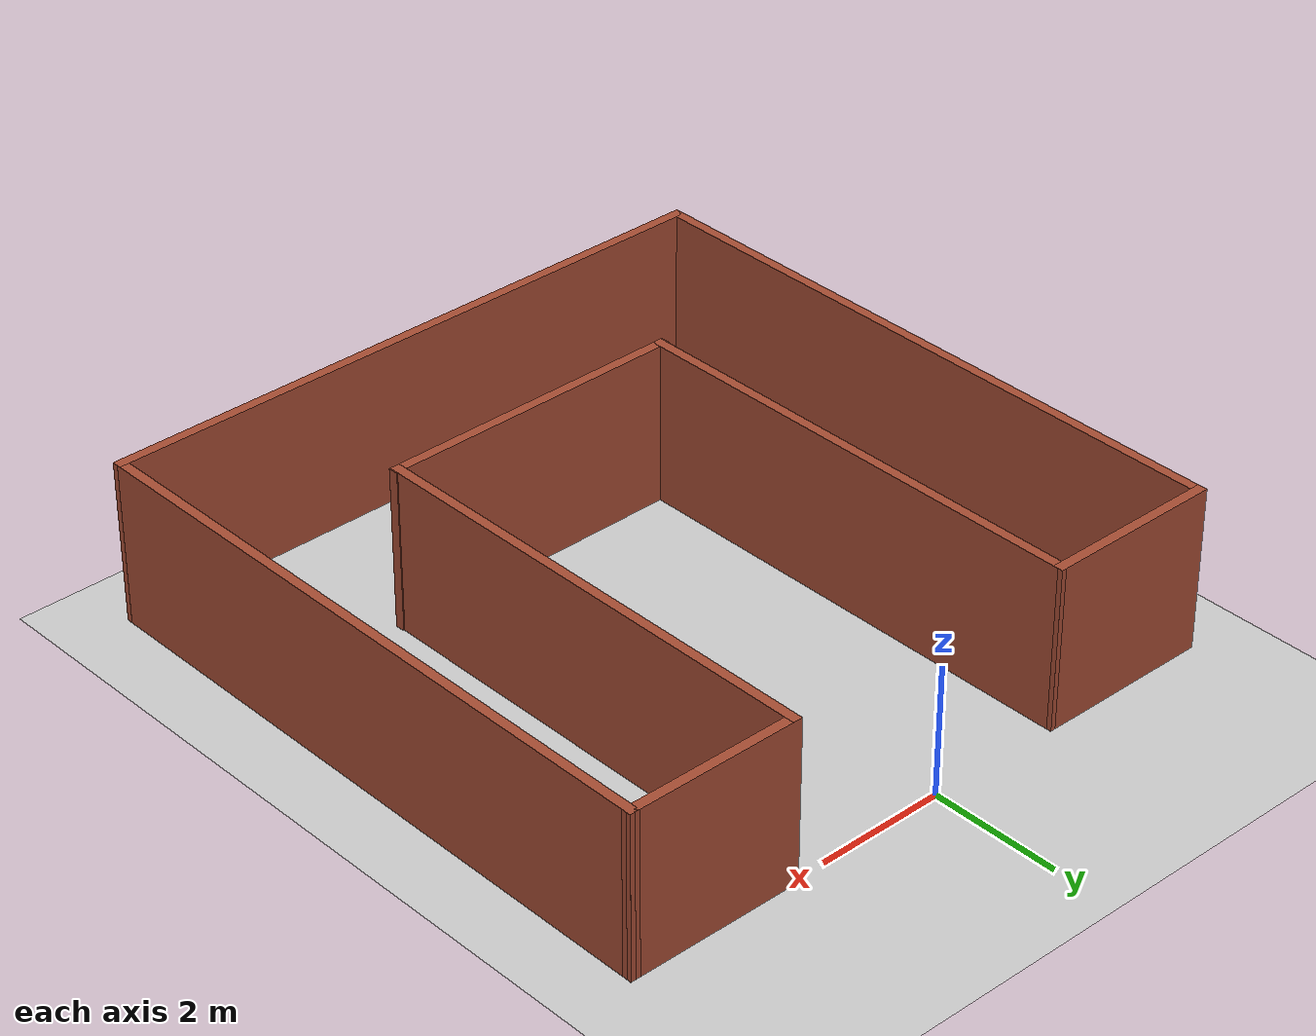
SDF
<sdf version="1.6">
 <world name="default">
  <light name="sun" type="directional">
   <pose>0 0 10 0 -0 0</pose>
   <diffuse>0.8 0.8 0.8 1</diffuse>
   <specular>0.1 0.1 0.1 1</specular>
   <attenuation>
    <range>1000</range>
    <constant>0.9</constant>
    <linear>0.01</linear>
    <quadratic>0.001</quadratic>
   </attenuation>
   <direction>-0.5 0.5 -1</direction>
  </light>
  <model name="ground_plane">
   <static>1</static>
   <link name="link">
    <collision name="collision">
     <geometry><plane><normal>0 0 1</normal><size>100 100</size></plane></geometry>
     <surface><friction><ode><mu>100</mu><mu2>50</mu2></ode></friction></surface>
    </collision>
    <visual name="visual">
     <cast_shadows>0</cast_shadows>
     <geometry><plane><normal>0 0 1</normal><size>100 100</size></plane></geometry>
     <material>
      <script><uri>file://media/materials/scripts/gazebo.material</uri><name>Gazebo/Grey</name></script>
     </material>
    </visual>
   </link>
  </model>
  <gravity>0 0 -9.8</gravity>
  <magnetic_field>6e-06 2.3e-05 -4.2e-05</magnetic_field>
  <atmosphere type="adiabatic"/>
  <physics name="default_physics" default="0" type="ode">
   <max_step_size>0.001</max_step_size>
   <real_time_factor>1</real_time_factor>
   <real_time_update_rate>1000</real_time_update_rate>
  </physics>
  <scene><ambient>0.4 0.4 0.4 1</ambient><background>0.7 0.7 0.7 1</background><shadows>1</shadows></scene>
  <spherical_coordinates>
   <surface_model>EARTH_WGS84</surface_model>
   <latitude_deg>0</latitude_deg>
   <longitude_deg>0</longitude_deg>
   <elevation>0</elevation>
   <heading_deg>0</heading_deg>
  </spherical_coordinates>
  <model name="wall">
   <pose>0.216499 -4.95825 0 0 -0 0</pose>
   <link name="Wall_14">
    <collision name="Wall_14_Collision">
     <geometry><box><size>10.0393 0.15 2.5</size></box></geometry>
     <pose>0 0 1.25 0 -0 0</pose>
    </collision>
    <visual name="Wall_14_Visual">
     <pose>0 0 1.25 0 -0 0</pose>
     <geometry><box><size>10.0393 0.15 2.5</size></box></geometry>
     <material>
      <script><uri>file://media/materials/scripts/gazebo.material</uri><name>Gazebo/Bricks</name></script>
      <ambient>1 1 1 1</ambient>
     </material>
    </visual>
    <pose>-4.93897 -0.000135 0 0 0 -1.5708</pose>
   </link>
   <link name="Wall_15">
    <collision name="Wall_15_Collision">
     <geometry><box><size>10 0.15 2.5</size></box></geometry>
     <pose>0 0 1.25 0 -0 0</pose>
    </collision>
    <visual name="Wall_15_Visual">
     <pose>0 0 1.25 0 -0 0</pose>
     <geometry><box><size>10 0.15 2.5</size></box></geometry>
     <material>
      <script><uri>file://media/materials/scripts/gazebo.material</uri><name>Gazebo/Bricks</name></script>
      <ambient>1 1 1 1</ambient>
     </material>
    </visual>
    <pose>-0.013966 -4.9448 0 0 -0 0</pose>
   </link>
   <link name="Wall_16">
    <collision name="Wall_16_Collision">
     <geometry><box><size>10.0197 0.15 2.5</size></box></geometry>
     <pose>0 0 1.25 0 -0 0</pose>
    </collision>
    <visual name="Wall_16_Visual">
     <pose>0 0 1.25 0 -0 0</pose>
     <geometry><box><size>10.0197 0.15 2.5</size></box></geometry>
     <material>
      <script><uri>file://media/materials/scripts/gazebo.material</uri><name>Gazebo/Bricks</name></script>
      <ambient>1 1 1 1</ambient>
     </material>
    </visual>
    <pose>4.9249 0.009697 0 0 -0 1.56799</pose>
   </link>
   <link name="Wall_18">
    <collision name="Wall_18_Collision">
     <geometry><box><size>7.5 0.15 2.5</size></box></geometry>
     <pose>0 0 1.25 0 -0 0</pose>
    </collision>
    <visual name="Wall_18_Visual">
     <pose>0 0 1.25 0 -0 0</pose>
     <geometry><box><size>7.5 0.15 2.5</size></box></geometry>
     <material>
      <script><uri>file://media/materials/scripts/gazebo.material</uri><name>Gazebo/Bricks</name></script>
      <ambient>1 1 1 1</ambient>
     </material>
    </visual>
    <pose>2.33876 1.26953 0 0 0 -1.5708</pose>
   </link>
   <link name="Wall_19">
    <collision name="Wall_19_Collision">
     <geometry><box><size>4.83313 0.15 2.5</size></box></geometry>
     <pose>0 0 1.25 0 -0 0</pose>
    </collision>
    <visual name="Wall_19_Visual">
     <pose>0 0 1.25 0 -0 0</pose>
     <geometry><box><size>4.83313 0.15 2.5</size></box></geometry>
     <material>
      <script><uri>file://media/materials/scripts/gazebo.material</uri><name>Gazebo/Bricks</name></script>
      <ambient>1 1 1 1</ambient>
     </material>
    </visual>
    <pose>0.014326 -2.41886 0 0 0 -3.13587</pose>
   </link>
   <link name="Wall_20">
    <collision name="Wall_20_Collision">
     <geometry><box><size>7.52683 0.15 2.5</size></box></geometry>
     <pose>0 0 1.25 0 -0 0</pose>
    </collision>
    <visual name="Wall_20_Visual">
     <pose>0 0 1.25 0 -0 0</pose>
     <geometry><box><size>7.52683 0.15 2.5</size></box></geometry>
     <material>
      <script><uri>file://media/materials/scripts/gazebo.material</uri><name>Gazebo/Bricks</name></script>
      <ambient>1 1 1 1</ambient>
     </material>
    </visual>
    <pose>-2.32565 1.25614 0 0 -0 1.57441</pose>
   </link>
   <link name="Wall_32">
    <collision name="Wall_32_Collision">
     <geometry><box><size>2.75 0.15 2.5</size></box></geometry>
     <pose>0 0 1.25 0 -0 0</pose>
    </collision>
    <visual name="Wall_32_Visual">
     <pose>0 0 1.25 0 -0 0</pose>
     <geometry><box><size>2.75 0.15 2.5</size></box></geometry>
     <material>
      <script><uri>file://media/materials/scripts/gazebo.material</uri><name>Gazebo/Bricks</name></script>
      <ambient>1 1 1 1</ambient>
     </material>
    </visual>
    <pose>-3.63897 4.94453 0 0 -0 0</pose>
   </link>
   <link name="Wall_34">
    <collision name="Wall_34_Collision">
     <geometry><box><size>2.75 0.15 2.5</size></box></geometry>
     <pose>0 0 1.25 0 -0 0</pose>
    </collision>
    <visual name="Wall_34_Visual">
     <pose>0 0 1.25 0 -0 0</pose>
     <geometry><box><size>2.75 0.15 2.5</size></box></geometry>
     <material>
      <script><uri>file://media/materials/scripts/gazebo.material</uri><name>Gazebo/Bricks</name></script>
      <ambient>1 1 1 1</ambient>
     </material>
    </visual>
    <pose>3.63876 4.94453 0 0 -0 3.14159</pose>
   </link>
   <static>1</static>
  </model>
 </world>
</sdf>
